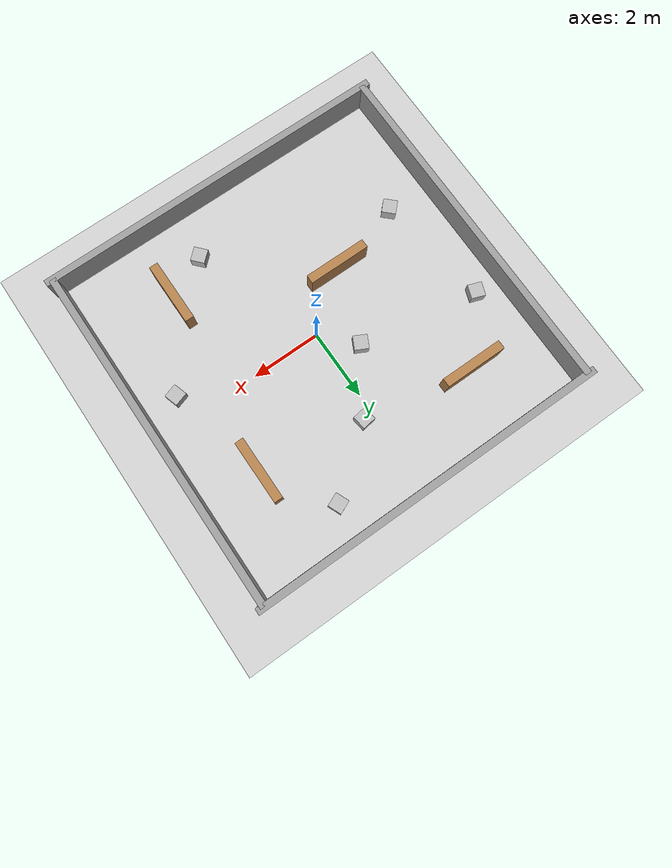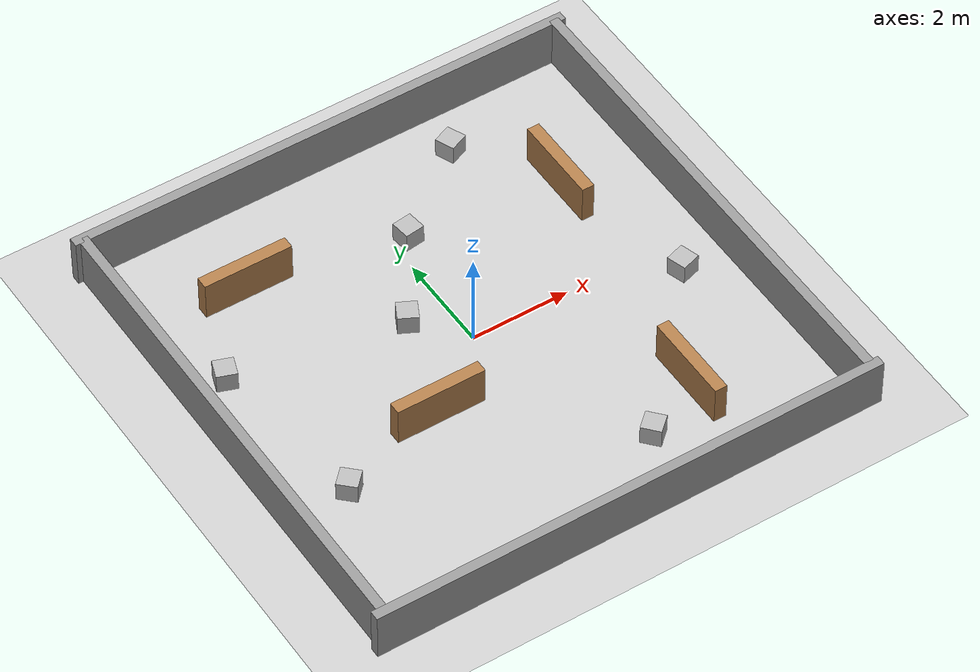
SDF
<sdf version="1.6">
 <world name="warehouse">
  <light name="sun" type="directional">
   <pose>0 0 10 0 -0 0</pose>
   <diffuse>0.8 0.8 0.8 1</diffuse>
   <specular>0.1 0.1 0.1 1</specular>
   <attenuation>
    <range>1000</range>
    <constant>0.9</constant>
    <linear>0.01</linear>
    <quadratic>0.001</quadratic>
   </attenuation>
   <direction>-0.5 0.5 -1</direction>
  </light>
  <model name="ground_plane">
   <static>1</static>
   <link name="link">
    <collision name="collision">
     <geometry><plane><normal>0 0 1</normal><size>100 100</size></plane></geometry>
     <surface><friction><ode><mu>100</mu><mu2>50</mu2></ode></friction></surface>
    </collision>
    <visual name="visual">
     <cast_shadows>0</cast_shadows>
     <geometry><plane><normal>0 0 1</normal><size>100 100</size></plane></geometry>
     <material>
      <script><uri>file://media/materials/scripts/gazebo.material</uri><name>Gazebo/Grey</name></script>
     </material>
    </visual>
   </link>
  </model>
  <gravity>0 0 -9.8</gravity>
  <physics name="default_physics" default="0" type="ode">
   <max_step_size>0.001</max_step_size>
   <real_time_factor>1</real_time_factor>
   <real_time_update_rate>1000</real_time_update_rate>
  </physics>
  <scene><ambient>0.4 0.4 0.4 1</ambient><background>0.7 0.7 0.7 1</background><shadows>1</shadows></scene>
  <model name="warehouse_walls">
   <static>1</static>
   <link name="wall_north">
    <pose>0 5.0 0 0 0 0</pose>
    <collision name="col">
     <pose>0 0 0.5 0 0 0</pose>
     <geometry><box><size>10.4 0.2 1.0</size></box></geometry>
    </collision>
    <visual name="vis">
     <pose>0 0 0.5 0 0 0</pose>
     <geometry><box><size>10.4 0.2 1.0</size></box></geometry>
     <material>
      <script><uri>file://media/materials/scripts/gazebo.material</uri><name>Gazebo/Grey</name></script>
     </material>
    </visual>
   </link>
   <link name="wall_south">
    <pose>0 -5.0 0 0 0 0</pose>
    <collision name="col">
     <pose>0 0 0.5 0 0 0</pose>
     <geometry><box><size>10.4 0.2 1.0</size></box></geometry>
    </collision>
    <visual name="vis">
     <pose>0 0 0.5 0 0 0</pose>
     <geometry><box><size>10.4 0.2 1.0</size></box></geometry>
     <material>
      <script><uri>file://media/materials/scripts/gazebo.material</uri><name>Gazebo/Grey</name></script>
     </material>
    </visual>
   </link>
   <link name="wall_east">
    <pose>5.0 0 0 0 0 0</pose>
    <collision name="col">
     <pose>0 0 0.5 0 0 0</pose>
     <geometry><box><size>0.2 10.0 1.0</size></box></geometry>
    </collision>
    <visual name="vis">
     <pose>0 0 0.5 0 0 0</pose>
     <geometry><box><size>0.2 10.0 1.0</size></box></geometry>
     <material>
      <script><uri>file://media/materials/scripts/gazebo.material</uri><name>Gazebo/Grey</name></script>
     </material>
    </visual>
   </link>
   <link name="wall_west">
    <pose>-5.0 0 0 0 0 0</pose>
    <collision name="col">
     <pose>0 0 0.5 0 0 0</pose>
     <geometry><box><size>0.2 10.0 1.0</size></box></geometry>
    </collision>
    <visual name="vis">
     <pose>0 0 0.5 0 0 0</pose>
     <geometry><box><size>0.2 10.0 1.0</size></box></geometry>
     <material>
      <script><uri>file://media/materials/scripts/gazebo.material</uri><name>Gazebo/Grey</name></script>
     </material>
    </visual>
   </link>
  </model>
  <model name="shelf_a">
   <static>1</static>
   <pose>-2.8 3.1 0 0 0 0</pose>
   <link name="link">
    <collision name="col">
     <pose>0 0 0.4 0 0 0</pose>
     <geometry><box><size>1.8 0.25 0.8</size></box></geometry>
    </collision>
    <visual name="vis">
     <pose>0 0 0.4 0 0 0</pose>
     <geometry><box><size>1.8 0.25 0.8</size></box></geometry>
     <material>
      <script><uri>file://media/materials/scripts/gazebo.material</uri><name>Gazebo/WoodFloor</name></script>
     </material>
    </visual>
   </link>
  </model>
  <model name="shelf_b">
   <static>1</static>
   <pose>3.3 2.2 0 0 0 1.5708</pose>
   <link name="link">
    <collision name="col">
     <pose>0 0 0.4 0 0 0</pose>
     <geometry><box><size>1.8 0.25 0.8</size></box></geometry>
    </collision>
    <visual name="vis">
     <pose>0 0 0.4 0 0 0</pose>
     <geometry><box><size>1.8 0.25 0.8</size></box></geometry>
     <material>
      <script><uri>file://media/materials/scripts/gazebo.material</uri><name>Gazebo/WoodFloor</name></script>
     </material>
    </visual>
   </link>
  </model>
  <model name="shelf_c">
   <static>1</static>
   <pose>-1.5 -1.2 0 0 0 0</pose>
   <link name="link">
    <collision name="col">
     <pose>0 0 0.4 0 0 0</pose>
     <geometry><box><size>1.8 0.25 0.8</size></box></geometry>
    </collision>
    <visual name="vis">
     <pose>0 0 0.4 0 0 0</pose>
     <geometry><box><size>1.8 0.25 0.8</size></box></geometry>
     <material>
      <script><uri>file://media/materials/scripts/gazebo.material</uri><name>Gazebo/WoodFloor</name></script>
     </material>
    </visual>
   </link>
  </model>
  <model name="shelf_d">
   <static>1</static>
   <pose>2.6 -3.0 0 0 0 1.5708</pose>
   <link name="link">
    <collision name="col">
     <pose>0 0 0.4 0 0 0</pose>
     <geometry><box><size>1.8 0.25 0.8</size></box></geometry>
    </collision>
    <visual name="vis">
     <pose>0 0 0.4 0 0 0</pose>
     <geometry><box><size>1.8 0.25 0.8</size></box></geometry>
     <material>
      <script><uri>file://media/materials/scripts/gazebo.material</uri><name>Gazebo/WoodFloor</name></script>
     </material>
    </visual>
   </link>
  </model>
  <model name="cardboard_box_0">
   <pose>2.1 4.0 0.149 0 0 0.4</pose>
   <link name="link">
    <inertial>
     <mass>2.0</mass>
     <inertia><ixx>0.0267</ixx><ixy>0</ixy><ixz>0</ixz><iyy>0.0267</iyy><iyz>0</iyz><izz>0.0267</izz></inertia>
    </inertial>
    <collision name="collision">
     <geometry><box><size>0.3 0.3 0.3</size></box></geometry>
     <surface>
      <friction><ode><mu>1</mu><mu2>1</mu2></ode></friction>
      <contact><ode><kp>1e+07</kp><kd>1</kd><min_depth>0.001</min_depth><max_vel>0.1</max_vel></ode></contact>
     </surface>
    </collision>
    <visual name="visual">
     <pose>0 0 -0.15 0 0 0</pose>
     <geometry>
      <mesh><uri>model://cardboard_box/meshes/cardboard_box.dae</uri><scale>1 1 1</scale></mesh>
     </geometry>
    </visual>
   </link>
  </model>
  <model name="cardboard_box_1">
   <pose>-0.8 0.9 0.149 0 0 1.1</pose>
   <link name="link">
    <inertial>
     <mass>2.0</mass>
     <inertia><ixx>0.0267</ixx><ixy>0</ixy><ixz>0</ixz><iyy>0.0267</iyy><iyz>0</iyz><izz>0.0267</izz></inertia>
    </inertial>
    <collision name="collision">
     <geometry><box><size>0.3 0.3 0.3</size></box></geometry>
     <surface>
      <friction><ode><mu>1</mu><mu2>1</mu2></ode></friction>
      <contact><ode><kp>1e+07</kp><kd>1</kd><min_depth>0.001</min_depth><max_vel>0.1</max_vel></ode></contact>
     </surface>
    </collision>
    <visual name="visual">
     <pose>0 0 -0.15 0 0 0</pose>
     <geometry>
      <mesh><uri>model://cardboard_box/meshes/cardboard_box.dae</uri><scale>1 1 1</scale></mesh>
     </geometry>
    </visual>
   </link>
  </model>
  <model name="cardboard_box_2">
   <pose>1.4 -3.6 0.149 0 0 2.3</pose>
   <link name="link">
    <inertial>
     <mass>2.0</mass>
     <inertia><ixx>0.0267</ixx><ixy>0</ixy><ixz>0</ixz><iyy>0.0267</iyy><iyz>0</iyz><izz>0.0267</izz></inertia>
    </inertial>
    <collision name="collision">
     <geometry><box><size>0.3 0.3 0.3</size></box></geometry>
     <surface>
      <friction><ode><mu>1</mu><mu2>1</mu2></ode></friction>
      <contact><ode><kp>1e+07</kp><kd>1</kd><min_depth>0.001</min_depth><max_vel>0.1</max_vel></ode></contact>
     </surface>
    </collision>
    <visual name="visual">
     <pose>0 0 -0.15 0 0 0</pose>
     <geometry>
      <mesh><uri>model://cardboard_box/meshes/cardboard_box.dae</uri><scale>1 1 1</scale></mesh>
     </geometry>
    </visual>
   </link>
  </model>
  <model name="cardboard_box_3">
   <pose>-3.7 -1.8 0.149 0 0 0.8</pose>
   <link name="link">
    <inertial>
     <mass>2.0</mass>
     <inertia><ixx>0.0267</ixx><ixy>0</ixy><ixz>0</ixz><iyy>0.0267</iyy><iyz>0</iyz><izz>0.0267</izz></inertia>
    </inertial>
    <collision name="collision">
     <geometry><box><size>0.3 0.3 0.3</size></box></geometry>
     <surface>
      <friction><ode><mu>1</mu><mu2>1</mu2></ode></friction>
      <contact><ode><kp>1e+07</kp><kd>1</kd><min_depth>0.001</min_depth><max_vel>0.1</max_vel></ode></contact>
     </surface>
    </collision>
    <visual name="visual">
     <pose>0 0 -0.15 0 0 0</pose>
     <geometry>
      <mesh><uri>model://cardboard_box/meshes/cardboard_box.dae</uri><scale>1 1 1</scale></mesh>
     </geometry>
    </visual>
   </link>
  </model>
  <model name="cardboard_box_4">
   <pose>0.3 2.6 0.149 0 0 1.7</pose>
   <link name="link">
    <inertial>
     <mass>2.0</mass>
     <inertia><ixx>0.0267</ixx><ixy>0</ixy><ixz>0</ixz><iyy>0.0267</iyy><iyz>0</iyz><izz>0.0267</izz></inertia>
    </inertial>
    <collision name="collision">
     <geometry><box><size>0.3 0.3 0.3</size></box></geometry>
     <surface>
      <friction><ode><mu>1</mu><mu2>1</mu2></ode></friction>
      <contact><ode><kp>1e+07</kp><kd>1</kd><min_depth>0.001</min_depth><max_vel>0.1</max_vel></ode></contact>
     </surface>
    </collision>
    <visual name="visual">
     <pose>0 0 -0.15 0 0 0</pose>
     <geometry>
      <mesh><uri>model://cardboard_box/meshes/cardboard_box.dae</uri><scale>1 1 1</scale></mesh>
     </geometry>
    </visual>
   </link>
  </model>
  <model name="cardboard_box_5">
   <pose>4.0 -0.7 0.149 0 0 0.3</pose>
   <link name="link">
    <inertial>
     <mass>2.0</mass>
     <inertia><ixx>0.0267</ixx><ixy>0</ixy><ixz>0</ixz><iyy>0.0267</iyy><iyz>0</iyz><izz>0.0267</izz></inertia>
    </inertial>
    <collision name="collision">
     <geometry><box><size>0.3 0.3 0.3</size></box></geometry>
     <surface>
      <friction><ode><mu>1</mu><mu2>1</mu2></ode></friction>
      <contact><ode><kp>1e+07</kp><kd>1</kd><min_depth>0.001</min_depth><max_vel>0.1</max_vel></ode></contact>
     </surface>
    </collision>
    <visual name="visual">
     <pose>0 0 -0.15 0 0 0</pose>
     <geometry>
      <mesh><uri>model://cardboard_box/meshes/cardboard_box.dae</uri><scale>1 1 1</scale></mesh>
     </geometry>
    </visual>
   </link>
  </model>
  <model name="cardboard_box_6">
   <pose>-4.2 1.5 0.149 0 0 2.8</pose>
   <link name="link">
    <inertial>
     <mass>2.0</mass>
     <inertia><ixx>0.0267</ixx><ixy>0</ixy><ixz>0</ixz><iyy>0.0267</iyy><iyz>0</iyz><izz>0.0267</izz></inertia>
    </inertial>
    <collision name="collision">
     <geometry><box><size>0.3 0.3 0.3</size></box></geometry>
     <surface>
      <friction><ode><mu>1</mu><mu2>1</mu2></ode></friction>
      <contact><ode><kp>1e+07</kp><kd>1</kd><min_depth>0.001</min_depth><max_vel>0.1</max_vel></ode></contact>
     </surface>
    </collision>
    <visual name="visual">
     <pose>0 0 -0.15 0 0 0</pose>
     <geometry>
      <mesh><uri>model://cardboard_box/meshes/cardboard_box.dae</uri><scale>1 1 1</scale></mesh>
     </geometry>
    </visual>
   </link>
  </model>
 </world>
</sdf>
